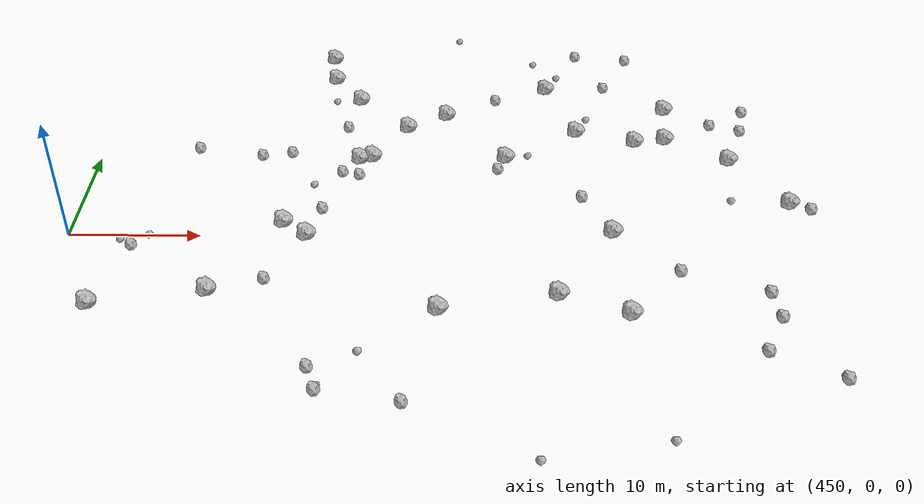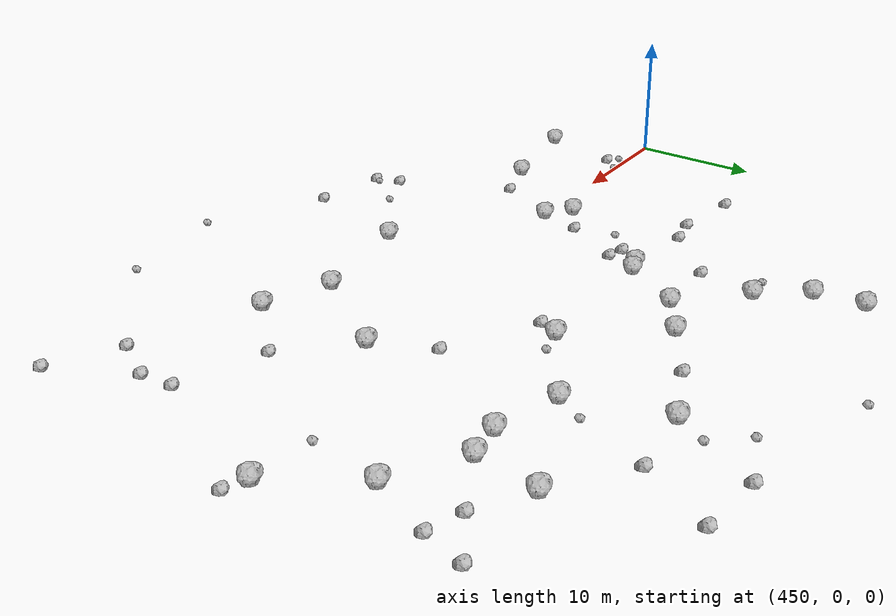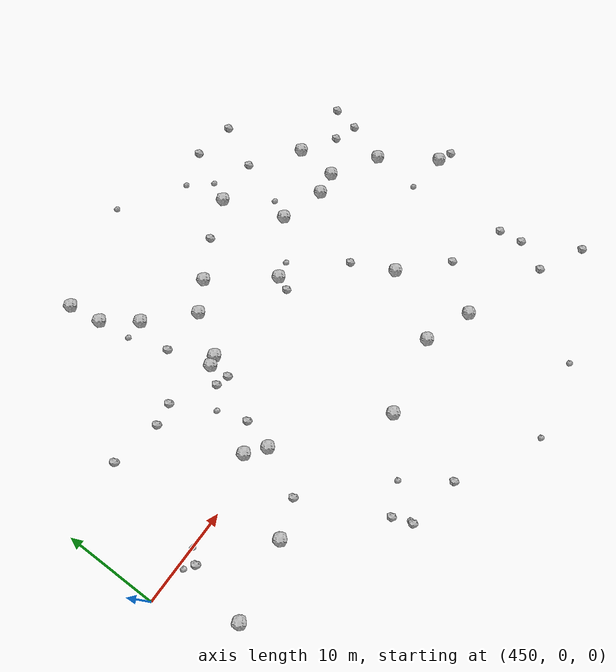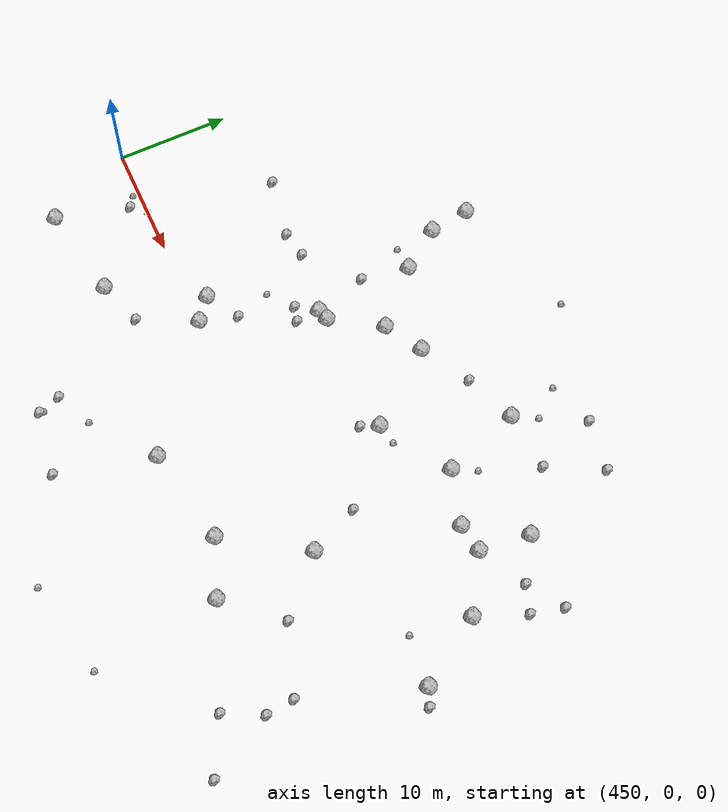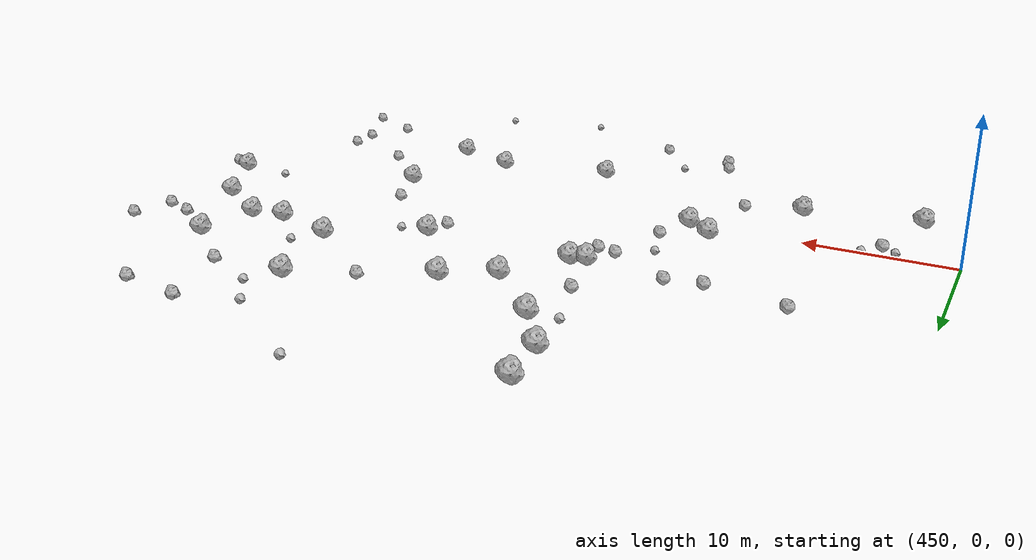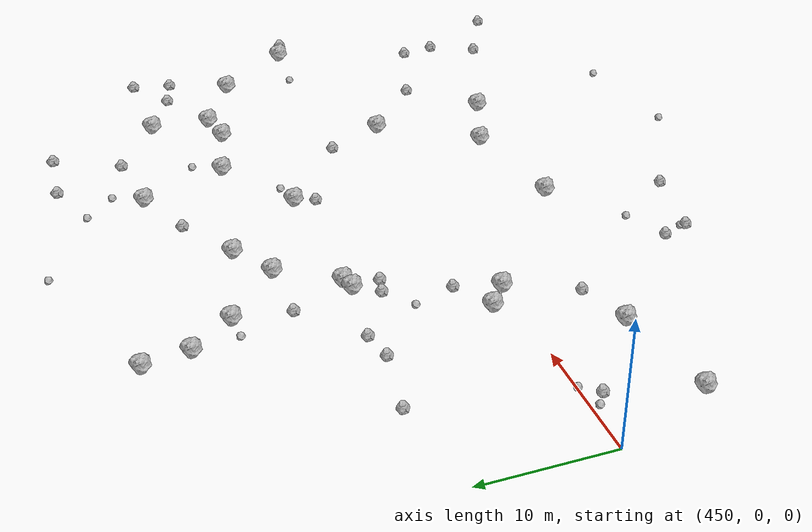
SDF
<sdf version="1.6">
 <world name="default">
  <include><uri>model://sun</uri></include>
  <model name="rock1_12_4">
   <include><uri>model://rock1</uri><pose>496.80206880865876 13.03000935774513 0.5 0 0 0</pose></include>
  </model>
  <model name="rock1_12_5">
   <include><uri>model://rock1</uri><pose>468.40793519423454 22.322287359105097 0.5 0 0 0</pose></include>
  </model>
  <model name="rock1_12_6">
   <include><uri>model://rock1</uri><pose>489.4112320872744 14.053644504691633 0.5 0 0 0</pose></include>
  </model>
  <model name="rock1_12_7">
   <include><uri>model://rock1</uri><pose>487.19805849212185 20.78657018199916 0.5 0 0 0</pose></include>
  </model>
  <model name="rock1_12_8">
   <include><uri>model://rock1</uri><pose>461.61203603248936 -6.3300893623109395 0.5 0 0 0</pose></include>
  </model>
  <model name="rock1_12_9">
   <include><uri>model://rock1</uri><pose>494.23466265601996 12.63148585609057 0.5 0 0 0</pose></include>
  </model>
  <model name="rock1_12_10">
   <include><uri>model://rock1</uri><pose>478.13950152642144 -8.083168349358882 0.5 0 0 0</pose></include>
  </model>
  <model name="rock1_12_11">
   <include><uri>model://rock1</uri><pose>497.3205692367224 17.539543892707762 0.5 0 0 0</pose></include>
  </model>
  <model name="rock1_12_12">
   <include><uri>model://rock1</uri><pose>466.1371009091346 1.5324533034937673 0.5 0 0 0</pose></include>
  </model>
  <model name="rock1_12_13">
   <include><uri>model://rock1</uri><pose>453.44652722306813 -7.808071551701602 0.5 0 0 0</pose></include>
  </model>
  <model name="rock1_12_14">
   <include><uri>model://rock1</uri><pose>475.1853071435679 14.547950319920886 0.5 0 0 0</pose></include>
  </model>
  <model name="rock1_12_15">
   <include><uri>model://rock1</uri><pose>468.036450973397 0.002169563423720433 0.5 0 0 0</pose></include>
  </model>
  <model name="rock1_12_16">
   <include><uri>model://rock1</uri><pose>505.38214981221927 4.289648302864805 0.5 0 0 0</pose></include>
  </model>
  <model name="rock1_12_17">
   <include><uri>model://rock1</uri><pose>486.6991973755394 -6.4603448239121235 0.5 0 0 0</pose></include>
  </model>
  <model name="rock1_12_18">
   <include><uri>model://rock1</uri><pose>470.8695687679237 18.832440650490753 0.5 0 0 0</pose></include>
  </model>
  <model name="rock1_12_19">
   <include><uri>model://rock1</uri><pose>467.9341220345656 25.88863365716145 0.5 0 0 0</pose></include>
  </model>
  <model name="rock1_12_20">
   <include><uri>model://rock1</uri><pose>483.36390150305465 10.210333828703625 0.5 0 0 0</pose></include>
  </model>
  <model name="rock1_12_21">
   <include><uri>model://rock1</uri><pose>491.22983447190575 0.5789759498783233 0.5 0 0 0</pose></include>
  </model>
  <model name="rock1_12_22">
   <include><uri>model://rock1</uri><pose>478.432925263922 16.489101621989846 0.5 0 0 0</pose></include>
  </model>
  <model name="rock1_12_23">
   <include><uri>model://rock1</uri><pose>501.6243790180268 10.054455139212081 0.5 0 0 0</pose></include>
  </model>
  <model name="rock1_12_24">
   <include><uri>model://rock1</uri><pose>471.4046323421946 9.909474821289393 0.5 0 0 0</pose></include>
  </model>
  <model name="rock1_12_25">
   <include><uri>model://rock1</uri><pose>472.4317418195012 10.228354262474546 0.5 0 0 0</pose></include>
  </model>
  <model name="rock1_12_26">
   <include><uri>model://rock1</uri><pose>491.67029397056615 -8.398605746768865 0.5 0 0 0</pose></include>
  </model>
  <model name="rock2_12_0">
   <include><uri>model://rock2</uri><pose>501.8003221399112 -5.97153215813881 0.3 0 0 0</pose></include>
  </model>
  <model name="rock2_12_1">
   <include><uri>model://rock2</uri><pose>490.23892711484274 26.711934034854437 0.3 0 0 0</pose></include>
  </model>
  <model name="rock2_12_2">
   <include><uri>model://rock2</uri><pose>492.32644103625364 21.238219405654554 0.3 0 0 0</pose></include>
  </model>
  <model name="rock2_12_3">
   <include><uri>model://rock2</uri><pose>469.5590141732173 -13.731200738847416 0.3 0 0 0</pose></include>
  </model>
  <model name="rock2_12_4">
   <include><uri>model://rock2</uri><pose>463.3238835253822 10.386844826620731 0.3 0 0 0</pose></include>
  </model>
  <model name="rock2_12_5">
   <include><uri>model://rock2</uri><pose>470.0983410760486 8.168762012397785 0.3 0 0 0</pose></include>
  </model>
  <model name="rock2_12_6">
   <include><uri>model://rock2</uri><pose>500.8953101692721 15.32200827685348 0.3 0 0 0</pose></include>
  </model>
  <model name="rock2_12_7">
   <include><uri>model://rock2</uri><pose>505.0952362302336 -14.32115345910741 0.3 0 0 0</pose></include>
  </model>
  <model name="rock2_12_8">
   <include><uri>model://rock2</uri><pose>470.083634978958 14.617294830224964 0.3 0 0 0</pose></include>
  </model>
  <model name="rock2_12_9">
   <include><uri>model://rock2</uri><pose>504.0221221440557 17.388341044512444 0.3 0 0 0</pose></include>
  </model>
  <model name="rock2_12_10">
   <include><uri>model://rock2</uri><pose>495.70391274374117 -3.771340310158479 0.3 0 0 0</pose></include>
  </model>
  <model name="rock2_12_11">
   <include><uri>model://rock2</uri><pose>489.2002624125448 5.054245187934434 0.3 0 0 0</pose></include>
  </model>
  <model name="rock2_12_12">
   <include><uri>model://rock2</uri><pose>457.9786239830734 11.353217373502524 0.3 0 0 0</pose></include>
  </model>
  <model name="rock2_12_13">
   <include><uri>model://rock2</uri><pose>465.7329587916176 10.820931794182563 0.3 0 0 0</pose></include>
  </model>
  <model name="rock2_12_14">
   <include><uri>model://rock2</uri><pose>475.94651926724555 -16.753885414112922 0.3 0 0 0</pose></include>
  </model>
  <model name="rock2_12_15">
   <include><uri>model://rock2</uri><pose>455.0614761863099 -1.2738010504977133 0.3 0 0 0</pose></include>
  </model>
  <model name="rock2_12_16">
   <include><uri>model://rock2</uri><pose>465.5066747734411 -4.97186558508708 0.3 0 0 0</pose></include>
  </model>
  <model name="rock2_12_17">
   <include><uri>model://rock2</uri><pose>482.6641745760012 19.02852300351808 0.3 0 0 0</pose></include>
  </model>
  <model name="rock2_12_18">
   <include><uri>model://rock2</uri><pose>468.9261777681054 3.316271105045004 0.3 0 0 0</pose></include>
  </model>
  <model name="rock2_12_19">
   <include><uri>model://rock2</uri><pose>503.3245355160718 14.493163050223593 0.3 0 0 0</pose></include>
  </model>
  <model name="rock2_12_20">
   <include><uri>model://rock2</uri><pose>502.06349676283634 -8.509443965974466 0.3 0 0 0</pose></include>
  </model>
  <model name="rock2_12_21">
   <include><uri>model://rock2</uri><pose>470.23774631485065 -15.759644165021287 0.3 0 0 0</pose></include>
  </model>
  <model name="rock2_12_22">
   <include><uri>model://rock2</uri><pose>506.87760055802255 3.6790793705968454 0.3 0 0 0</pose></include>
  </model>
  <model name="rock2_12_23">
   <include><uri>model://rock2</uri><pose>500.41047813294585 -11.849943367228853 0.3 0 0 0</pose></include>
  </model>
  <model name="rock2_12_24">
   <include><uri>model://rock2</uri><pose>471.46549218591304 7.799545149140812 0.3 0 0 0</pose></include>
  </model>
  <model name="rock2_12_25">
   <include><uri>model://rock2</uri><pose>482.66184638659826 8.689883820304907 0.3 0 0 0</pose></include>
  </model>
  <model name="rock2_12_26">
   <include><uri>model://rock2</uri><pose>494.80219981991206 26.07817807954028 0.3 0 0 0</pose></include>
  </model>
  <model name="rock3_12_0">
   <include><uri>model://rock3</uri><pose>468.71763468750294 18.746360200033642 0.2 0 0 0</pose></include>
  </model>
  <model name="rock3_12_1">
   <include><uri>model://rock3</uri><pose>500.86912920439863 4.70600734498737 0.2 0 0 0</pose></include>
  </model>
  <model name="rock3_12_2">
   <include><uri>model://rock3</uri><pose>472.7968481862074 -12.263611722337181 0.2 0 0 0</pose></include>
  </model>
  <model name="rock3_12_3">
   <include><uri>model://rock3</uri><pose>490.4013972190717 16.092898709947136 0.2 0 0 0</pose></include>
  </model>
  <model name="rock3_12_4">
   <include><uri>model://rock3</uri><pose>485.16051610874547 10.61527897702073 0.2 0 0 0</pose></include>
  </model>
  <model name="rock3_12_5">
   <include><uri>model://rock3</uri><pose>454.0707145688589 -0.6179310358542125 0.2 0 0 0</pose></include>
  </model>
  <model name="rock3_12_6">
   <include><uri>model://rock3</uri><pose>486.2446864167046 25.2737122929597 0.2 0 0 0</pose></include>
  </model>
  <model name="rock3_12_7">
   <include><uri>model://rock3</uri><pose>456.1307962639933 -0.06422392636720886 0.2 0 0 0</pose></include>
  </model>
  <model name="rock3_12_8">
   <include><uri>model://rock3</uri><pose>493.0763488824879 -19.78589172355143 0.2 0 0 0</pose></include>
  </model>
  <model name="rock3_12_9">
   <include><uri>model://rock3</uri><pose>479.44516246504173 29.54921044141409 0.2 0 0 0</pose></include>
  </model>
  <model name="rock3_12_10">
   <include><uri>model://rock3</uri><pose>467.9640523751868 6.427966413042192 0.2 0 0 0</pose></include>
  </model>
  <model name="rock3_12_11">
   <include><uri>model://rock3</uri><pose>484.6434122905388 -21.428330430714908 0.2 0 0 0</pose></include>
  </model>
  <model name="rock3_12_12">
   <include><uri>model://rock3</uri><pose>470.31042726267594 -15.420632676615265 0.2 0 0 0</pose></include>
  </model>
  <model name="rock3_12_13">
   <include><uri>model://rock3</uri><pose>488.2469538626125 22.9162402287878 0.2 0 0 0</pose></include>
  </model>
 </world>
</sdf>
